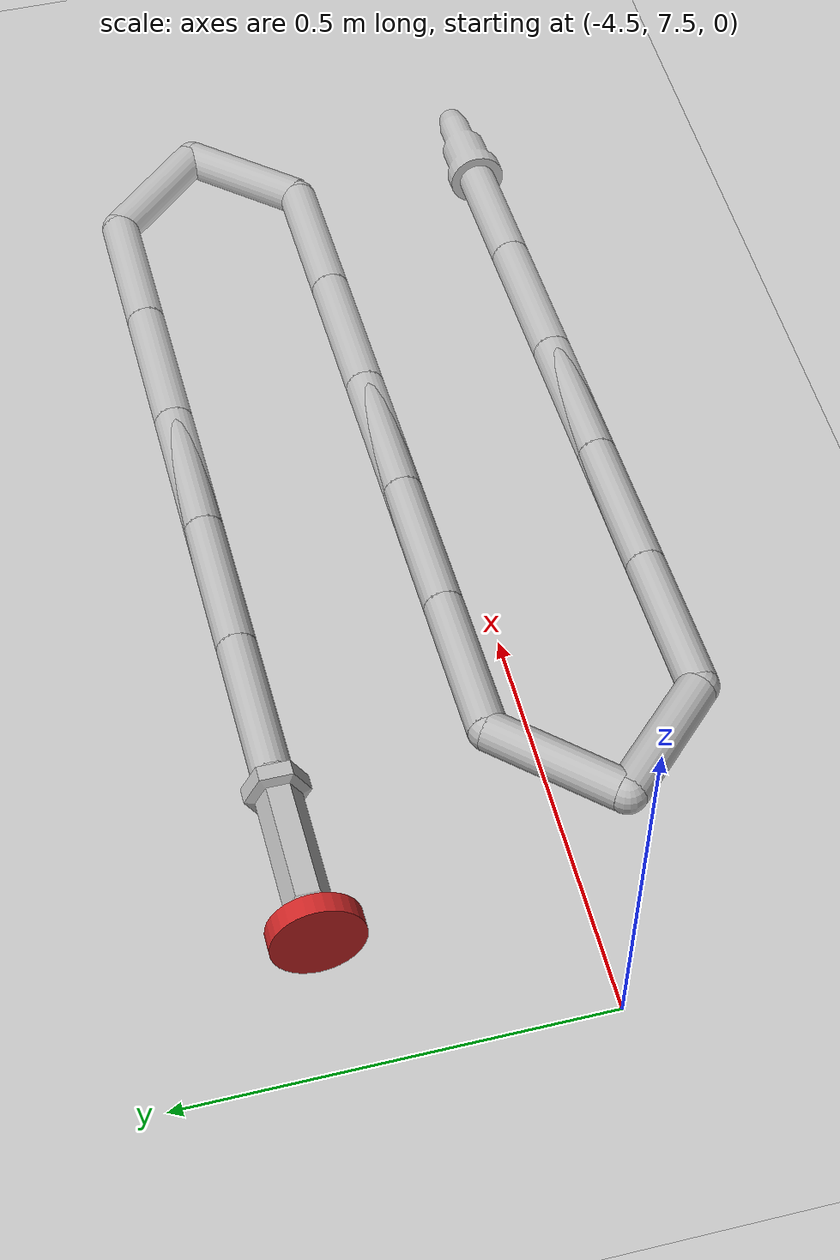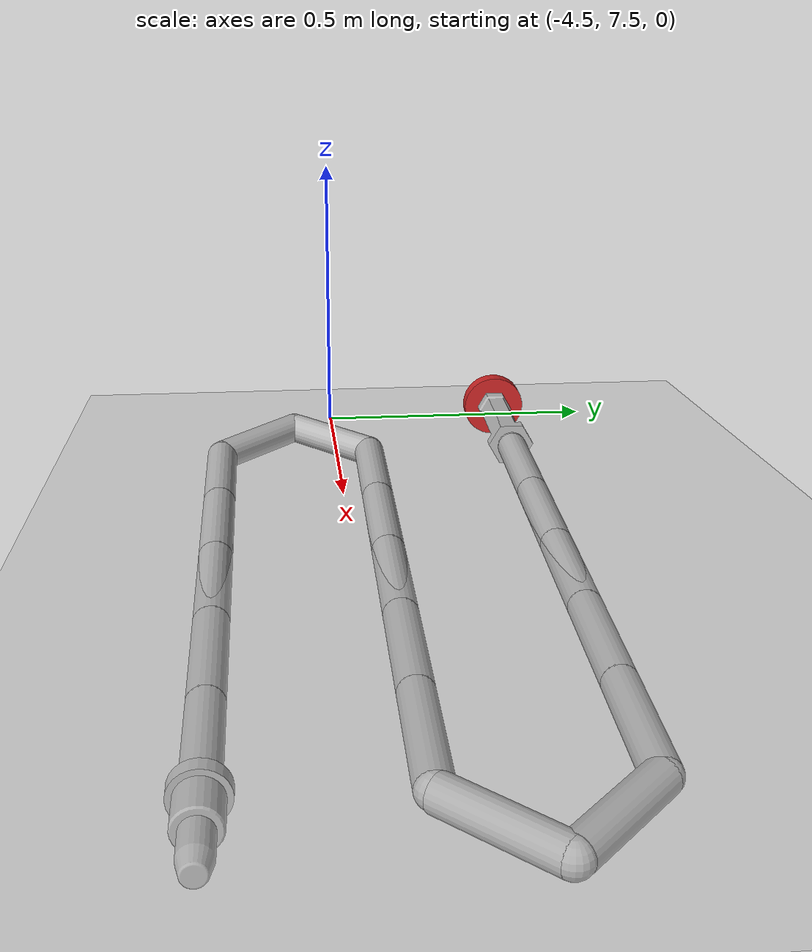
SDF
<sdf version="1.7">
 <world name="default">
  <model name="ground_plane">
   <static>1</static>
   <link name="link">
    <collision name="collision">
     <geometry><plane><normal>0 0 1</normal><size>100 100</size></plane></geometry>
     <surface><friction><ode><mu>100</mu><mu2>50</mu2></ode></friction></surface>
    </collision>
    <visual name="visual">
     <cast_shadows>0</cast_shadows>
     <geometry><plane><normal>0 0 1</normal><size>100 100</size></plane></geometry>
     <material>
      <script><uri>file://media/materials/scripts/gazebo.material</uri><name>Gazebo/Grey</name></script>
     </material>
    </visual>
   </link>
  </model>
  <model name="fire_hose_long_curled">
   <pose>-4.23806 7.80597 0.043395 -2.2e-05 0.103032 0.001179</pose>
   <link name="coupling">
    <inertial>
     <pose>-0.07 0 0 0 -0 0</pose>
     <mass>0.1</mass>
     <inertia><ixx>0.01</ixx><ixy>0</ixy><ixz>0</ixz><iyy>0.01</iyy><iyz>0</iyz><izz>0.01</izz></inertia>
    </inertial>
    <collision name="coupling_collision">
     <pose>-0.01 0 0 0 -1.57079 0</pose>
     <geometry>
      <mesh><scale>0.4 0.4 0.8</scale><uri>model://fire_hose_long_curled/meshes/coupling_hexagon.dae</uri></mesh>
     </geometry>
     <surface><friction><ode><mu>1</mu><mu2>1</mu2></ode></friction></surface>
    </collision>
    <visual name="coupling_vis">
     <pose>-0.01 0 0 0 -1.57079 0</pose>
     <geometry>
      <mesh><scale>0.4 0.4 0.8</scale><uri>model://fire_hose_long_curled/meshes/coupling_hexagon.dae</uri></mesh>
     </geometry>
     <material>
      <script>
       <uri>model://fire_hose_long_curled/materials/scripts</uri>
       <uri>model://fire_hose_long_curled/materials/textures</uri>
       <name>fire_hose_long_curled/fire_hose_coupling</name>
      </script>
     </material>
    </visual>
    <visual name="attachment_vis">
     <pose>-0.1225 0 0 0 -1.57079 0</pose>
     <geometry><mesh><uri>model://fire_hose_long_curled/meshes/connector.dae</uri></mesh></geometry>
     <material>
      <script>
       <uri>model://fire_hose_long_curled/materials/scripts</uri>
       <uri>model://fire_hose_long_curled/materials/textures</uri>
       <name>fire_hose_long_curled/fire_hose_red_coupling</name>
      </script>
     </material>
    </visual>
    <collision name="attachment_col">
     <pose>-0.1225 0 0 0 -1.57079 0</pose>
     <geometry><cylinder><length>0.025</length><radius>0.055</radius></cylinder></geometry>
     <surface>
      <contact><ode><min_depth>0.005</min_depth></ode></contact>
      <friction><ode><mu>1</mu><mu2>1</mu2></ode></friction>
     </surface>
    </collision>
   </link>
   <link name="link_00">
    <pose>0.1 0 0 0 -0 0</pose>
    <inertial>
     <mass>0.1</mass>
     <pose>0.1 0 0 0 -0 0</pose>
     <inertia><ixx>0.01</ixx><ixy>0</ixy><ixz>0</ixz><iyy>0.01</iyy><iyz>0</iyz><izz>0.01</izz></inertia>
    </inertial>
    <visual name="sphere">
     <geometry><sphere><radius>0.025</radius></sphere></geometry>
     <material>
      <script>
       <uri>model://fire_hose_long_curled/materials/scripts</uri>
       <uri>model://fire_hose_long_curled/materials/textures</uri>
       <name>fire_hose_long_curled/fire_hose_canvas</name>
      </script>
     </material>
    </visual>
   </link>
   <link name="link_01">
    <pose>0.1 0 0 0 -0 0</pose>
    <inertial>
     <mass>0.1</mass>
     <pose>0.1 0 0 0 -0 0</pose>
     <inertia><ixx>0.01</ixx><ixy>0</ixy><ixz>0</ixz><iyy>0.01</iyy><iyz>0</iyz><izz>0.01</izz></inertia>
    </inertial>
    <collision name="collision">
     <pose>0.1 0 0 0 1.57079 0</pose>
     <geometry><cylinder><length>0.2</length><radius>0.025</radius></cylinder></geometry>
     <surface>
      <contact><ode><min_depth>0.005</min_depth></ode></contact>
      <friction><ode><mu>1</mu><mu2>1</mu2></ode></friction>
     </surface>
    </collision>
    <visual name="visual">
     <pose>0.1 0 0 0 1.57079 0</pose>
     <geometry><cylinder><length>0.2</length><radius>0.025</radius></cylinder></geometry>
     <material>
      <script>
       <uri>model://fire_hose_long_curled/materials/scripts</uri>
       <uri>model://fire_hose_long_curled/materials/textures</uri>
       <name>fire_hose_long_curled/fire_hose_canvas</name>
      </script>
     </material>
    </visual>
   </link>
   <link name="link_02">
    <pose>0.3 0 0 0 -0 0</pose>
    <inertial>
     <mass>0.1</mass>
     <pose>0.1 0 0 0 -0 0</pose>
     <inertia><ixx>0.01</ixx><ixy>0</ixy><ixz>0</ixz><iyy>0.01</iyy><iyz>0</iyz><izz>0.01</izz></inertia>
    </inertial>
    <collision name="collision">
     <pose>0.1 0 0 0 1.57079 0</pose>
     <geometry><cylinder><length>0.2</length><radius>0.025</radius></cylinder></geometry>
     <surface>
      <contact><ode><min_depth>0.005</min_depth></ode></contact>
      <friction><ode><mu>1</mu><mu2>1</mu2></ode></friction>
     </surface>
    </collision>
    <visual name="visual">
     <pose>0.1 0 0 0 1.57079 0</pose>
     <geometry><cylinder><length>0.2</length><radius>0.025</radius></cylinder></geometry>
     <material>
      <script>
       <uri>model://fire_hose_long_curled/materials/scripts</uri>
       <uri>model://fire_hose_long_curled/materials/textures</uri>
       <name>fire_hose_long_curled/fire_hose_canvas</name>
      </script>
     </material>
    </visual>
    <visual name="sphere">
     <geometry><sphere><radius>0.025</radius></sphere></geometry>
     <material>
      <script>
       <uri>model://fire_hose_long_curled/materials/scripts</uri>
       <uri>model://fire_hose_long_curled/materials/textures</uri>
       <name>fire_hose_long_curled/fire_hose_canvas</name>
      </script>
     </material>
    </visual>
   </link>
   <link name="link_03">
    <pose>0.5 0 0 0 -0 0</pose>
    <inertial>
     <mass>0.1</mass>
     <pose>0.1 0 0 0 -0 0</pose>
     <inertia><ixx>0.01</ixx><ixy>0</ixy><ixz>0</ixz><iyy>0.01</iyy><iyz>0</iyz><izz>0.01</izz></inertia>
    </inertial>
    <collision name="collision">
     <pose>0.1 0 0 0 1.57079 0</pose>
     <geometry><cylinder><length>0.2</length><radius>0.025</radius></cylinder></geometry>
     <surface>
      <contact><ode><min_depth>0.005</min_depth></ode></contact>
      <friction><ode><mu>1</mu><mu2>1</mu2></ode></friction>
     </surface>
    </collision>
    <visual name="visual">
     <pose>0.1 0 0 0 1.57079 0</pose>
     <geometry><cylinder><length>0.2</length><radius>0.025</radius></cylinder></geometry>
     <material>
      <script>
       <uri>model://fire_hose_long_curled/materials/scripts</uri>
       <uri>model://fire_hose_long_curled/materials/textures</uri>
       <name>fire_hose_long_curled/fire_hose_canvas</name>
      </script>
     </material>
    </visual>
    <visual name="sphere">
     <geometry><sphere><radius>0.025</radius></sphere></geometry>
     <material>
      <script>
       <uri>model://fire_hose_long_curled/materials/scripts</uri>
       <uri>model://fire_hose_long_curled/materials/textures</uri>
       <name>fire_hose_long_curled/fire_hose_canvas</name>
      </script>
     </material>
    </visual>
   </link>
   <link name="link_04">
    <pose>0.7 0 0 0 -0 0</pose>
    <inertial>
     <mass>0.1</mass>
     <pose>0.1 0 0 0 -0 0</pose>
     <inertia><ixx>0.01</ixx><ixy>0</ixy><ixz>0</ixz><iyy>0.01</iyy><iyz>0</iyz><izz>0.01</izz></inertia>
    </inertial>
    <collision name="collision">
     <pose>0.1 0 0 0 1.57079 0</pose>
     <geometry><cylinder><length>0.2</length><radius>0.025</radius></cylinder></geometry>
     <surface>
      <contact><ode><min_depth>0.005</min_depth></ode></contact>
      <friction><ode><mu>1</mu><mu2>1</mu2></ode></friction>
     </surface>
    </collision>
    <visual name="visual">
     <pose>0.1 0 0 0 1.57079 0</pose>
     <geometry><cylinder><length>0.2</length><radius>0.025</radius></cylinder></geometry>
     <material>
      <script>
       <uri>model://fire_hose_long_curled/materials/scripts</uri>
       <uri>model://fire_hose_long_curled/materials/textures</uri>
       <name>fire_hose_long_curled/fire_hose_canvas</name>
      </script>
     </material>
    </visual>
    <visual name="sphere">
     <geometry><sphere><radius>0.025</radius></sphere></geometry>
     <material>
      <script>
       <uri>model://fire_hose_long_curled/materials/scripts</uri>
       <uri>model://fire_hose_long_curled/materials/textures</uri>
       <name>fire_hose_long_curled/fire_hose_canvas</name>
      </script>
     </material>
    </visual>
   </link>
   <link name="link_05">
    <pose>0.9 0 0 0 -0 0</pose>
    <inertial>
     <mass>0.1</mass>
     <pose>0.1 0 0 0 -0 0</pose>
     <inertia><ixx>0.01</ixx><ixy>0</ixy><ixz>0</ixz><iyy>0.01</iyy><iyz>0</iyz><izz>0.01</izz></inertia>
    </inertial>
    <collision name="collision">
     <pose>0.1 0 0 0 1.57079 0</pose>
     <geometry><cylinder><length>0.2</length><radius>0.025</radius></cylinder></geometry>
     <surface>
      <contact><ode><min_depth>0.005</min_depth></ode></contact>
      <friction><ode><mu>1</mu><mu2>1</mu2></ode></friction>
     </surface>
    </collision>
    <visual name="visual">
     <pose>0.1 0 0 0 1.57079 0</pose>
     <geometry><cylinder><length>0.2</length><radius>0.025</radius></cylinder></geometry>
     <material>
      <script>
       <uri>model://fire_hose_long_curled/materials/scripts</uri>
       <uri>model://fire_hose_long_curled/materials/textures</uri>
       <name>fire_hose_long_curled/fire_hose_canvas</name>
      </script>
     </material>
    </visual>
    <visual name="sphere">
     <geometry><sphere><radius>0.025</radius></sphere></geometry>
     <material>
      <script>
       <uri>model://fire_hose_long_curled/materials/scripts</uri>
       <uri>model://fire_hose_long_curled/materials/textures</uri>
       <name>fire_hose_long_curled/fire_hose_canvas</name>
      </script>
     </material>
    </visual>
   </link>
   <link name="link_06">
    <pose>1.1 0 0 0 0 -0.785</pose>
    <inertial>
     <mass>0.1</mass>
     <pose>0.0875 0 0 0 -0 0</pose>
     <inertia><ixx>0.01</ixx><ixy>0</ixy><ixz>0</ixz><iyy>0.01</iyy><iyz>0</iyz><izz>0.01</izz></inertia>
    </inertial>
    <collision name="collision">
     <pose>0.0875 0 0 0 1.57079 0</pose>
     <geometry><cylinder><length>0.175</length><radius>0.025</radius></cylinder></geometry>
     <surface>
      <contact><ode><min_depth>0.005</min_depth></ode></contact>
      <friction><ode><mu>1</mu><mu2>1</mu2></ode></friction>
     </surface>
    </collision>
    <visual name="visual">
     <pose>0.0875 0 0 0 1.57079 0</pose>
     <geometry><cylinder><length>0.175</length><radius>0.025</radius></cylinder></geometry>
     <material>
      <script>
       <uri>model://fire_hose_long_curled/materials/scripts</uri>
       <uri>model://fire_hose_long_curled/materials/textures</uri>
       <name>fire_hose_long_curled/fire_hose_canvas</name>
      </script>
     </material>
    </visual>
    <visual name="sphere">
     <geometry><sphere><radius>0.025</radius></sphere></geometry>
     <material>
      <script>
       <uri>model://fire_hose_long_curled/materials/scripts</uri>
       <uri>model://fire_hose_long_curled/materials/textures</uri>
       <name>fire_hose_long_curled/fire_hose_canvas</name>
      </script>
     </material>
    </visual>
   </link>
   <link name="link_07">
    <pose>1.227 -0.127 0 0 0 -2.3415</pose>
    <inertial>
     <mass>0.1</mass>
     <pose>0.0875 0 0 0 -0 0</pose>
     <inertia><ixx>0.01</ixx><ixy>0</ixy><ixz>0</ixz><iyy>0.01</iyy><iyz>0</iyz><izz>0.01</izz></inertia>
    </inertial>
    <collision name="collision">
     <pose>0.0875 0 0 0 1.57079 0</pose>
     <geometry><cylinder><length>0.175</length><radius>0.025</radius></cylinder></geometry>
     <surface>
      <contact><ode><min_depth>0.005</min_depth></ode></contact>
      <friction><ode><mu>1</mu><mu2>1</mu2></ode></friction>
     </surface>
    </collision>
    <visual name="visual">
     <pose>0.0875 0 0 0 1.57079 0</pose>
     <geometry><cylinder><length>0.175</length><radius>0.025</radius></cylinder></geometry>
     <material>
      <script>
       <uri>model://fire_hose_long_curled/materials/scripts</uri>
       <uri>model://fire_hose_long_curled/materials/textures</uri>
       <name>fire_hose_long_curled/fire_hose_canvas</name>
      </script>
     </material>
    </visual>
    <visual name="sphere">
     <geometry><sphere><radius>0.025</radius></sphere></geometry>
     <material>
      <script>
       <uri>model://fire_hose_long_curled/materials/scripts</uri>
       <uri>model://fire_hose_long_curled/materials/textures</uri>
       <name>fire_hose_long_curled/fire_hose_canvas</name>
      </script>
     </material>
    </visual>
   </link>
   <link name="link_08">
    <pose>1.1 -0.254 0 0 0 -3.1415</pose>
    <inertial>
     <mass>0.1</mass>
     <pose>0.1 0 0 0 -0 0</pose>
     <inertia><ixx>0.01</ixx><ixy>0</ixy><ixz>0</ixz><iyy>0.01</iyy><iyz>0</iyz><izz>0.01</izz></inertia>
    </inertial>
    <collision name="collision">
     <pose>0.1 0 0 0 1.57079 0</pose>
     <geometry><cylinder><length>0.2</length><radius>0.025</radius></cylinder></geometry>
     <surface>
      <contact><ode><min_depth>0.005</min_depth></ode></contact>
      <friction><ode><mu>1</mu><mu2>1</mu2></ode></friction>
     </surface>
    </collision>
    <visual name="visual">
     <pose>0.1 0 0 0 1.57079 0</pose>
     <geometry><cylinder><length>0.2</length><radius>0.025</radius></cylinder></geometry>
     <material>
      <script>
       <uri>model://fire_hose_long_curled/materials/scripts</uri>
       <uri>model://fire_hose_long_curled/materials/textures</uri>
       <name>fire_hose_long_curled/fire_hose_canvas</name>
      </script>
     </material>
    </visual>
    <visual name="sphere">
     <geometry><sphere><radius>0.025</radius></sphere></geometry>
     <material>
      <script>
       <uri>model://fire_hose_long_curled/materials/scripts</uri>
       <uri>model://fire_hose_long_curled/materials/textures</uri>
       <name>fire_hose_long_curled/fire_hose_canvas</name>
      </script>
     </material>
    </visual>
   </link>
   <link name="link_09">
    <pose>0.9 -0.254 0 0 0 -3.1415</pose>
    <inertial>
     <mass>0.1</mass>
     <pose>0.1 0 0 0 -0 0</pose>
     <inertia><ixx>0.01</ixx><ixy>0</ixy><ixz>0</ixz><iyy>0.01</iyy><iyz>0</iyz><izz>0.01</izz></inertia>
    </inertial>
    <collision name="collision">
     <pose>0.1 0 0 0 1.57079 0</pose>
     <geometry><cylinder><length>0.2</length><radius>0.025</radius></cylinder></geometry>
     <surface>
      <contact><ode><min_depth>0.005</min_depth></ode></contact>
      <friction><ode><mu>1</mu><mu2>1</mu2></ode></friction>
     </surface>
    </collision>
    <visual name="visual">
     <pose>0.1 0 0 0 1.57079 0</pose>
     <geometry><cylinder><length>0.2</length><radius>0.025</radius></cylinder></geometry>
     <material>
      <script>
       <uri>model://fire_hose_long_curled/materials/scripts</uri>
       <uri>model://fire_hose_long_curled/materials/textures</uri>
       <name>fire_hose_long_curled/fire_hose_canvas</name>
      </script>
     </material>
    </visual>
    <visual name="sphere">
     <geometry><sphere><radius>0.025</radius></sphere></geometry>
     <material>
      <script>
       <uri>model://fire_hose_long_curled/materials/scripts</uri>
       <uri>model://fire_hose_long_curled/materials/textures</uri>
       <name>fire_hose_long_curled/fire_hose_canvas</name>
      </script>
     </material>
    </visual>
   </link>
   <link name="link_10">
    <pose>0.7 -0.254 0 0 0 -3.1415</pose>
    <inertial>
     <mass>0.1</mass>
     <pose>0.1 0 0 0 -0 0</pose>
     <inertia><ixx>0.01</ixx><ixy>0</ixy><ixz>0</ixz><iyy>0.01</iyy><iyz>0</iyz><izz>0.01</izz></inertia>
    </inertial>
    <collision name="collision">
     <pose>0.1 0 0 0 1.57079 0</pose>
     <geometry><cylinder><length>0.2</length><radius>0.025</radius></cylinder></geometry>
     <surface>
      <contact><ode><min_depth>0.005</min_depth></ode></contact>
      <friction><ode><mu>1</mu><mu2>1</mu2></ode></friction>
     </surface>
    </collision>
    <visual name="visual">
     <pose>0.1 0 0 0 1.57079 0</pose>
     <geometry><cylinder><length>0.2</length><radius>0.025</radius></cylinder></geometry>
     <material>
      <script>
       <uri>model://fire_hose_long_curled/materials/scripts</uri>
       <uri>model://fire_hose_long_curled/materials/textures</uri>
       <name>fire_hose_long_curled/fire_hose_canvas</name>
      </script>
     </material>
    </visual>
    <visual name="sphere">
     <geometry><sphere><radius>0.025</radius></sphere></geometry>
     <material>
      <script>
       <uri>model://fire_hose_long_curled/materials/scripts</uri>
       <uri>model://fire_hose_long_curled/materials/textures</uri>
       <name>fire_hose_long_curled/fire_hose_canvas</name>
      </script>
     </material>
    </visual>
   </link>
   <link name="link_11">
    <pose>0.5 -0.254 0 0 0 -3.1415</pose>
    <inertial>
     <mass>0.1</mass>
     <pose>0.1 0 0 0 -0 0</pose>
     <inertia><ixx>0.01</ixx><ixy>0</ixy><ixz>0</ixz><iyy>0.01</iyy><iyz>0</iyz><izz>0.01</izz></inertia>
    </inertial>
    <collision name="collision">
     <pose>0.1 0 0 0 1.57079 0</pose>
     <geometry><cylinder><length>0.2</length><radius>0.025</radius></cylinder></geometry>
     <surface>
      <contact><ode><min_depth>0.005</min_depth></ode></contact>
      <friction><ode><mu>1</mu><mu2>1</mu2></ode></friction>
     </surface>
    </collision>
    <visual name="visual">
     <pose>0.1 0 0 0 1.57079 0</pose>
     <geometry><cylinder><length>0.2</length><radius>0.025</radius></cylinder></geometry>
     <material>
      <script>
       <uri>model://fire_hose_long_curled/materials/scripts</uri>
       <uri>model://fire_hose_long_curled/materials/textures</uri>
       <name>fire_hose_long_curled/fire_hose_canvas</name>
      </script>
     </material>
    </visual>
    <visual name="sphere">
     <geometry><sphere><radius>0.025</radius></sphere></geometry>
     <material>
      <script>
       <uri>model://fire_hose_long_curled/materials/scripts</uri>
       <uri>model://fire_hose_long_curled/materials/textures</uri>
       <name>fire_hose_long_curled/fire_hose_canvas</name>
      </script>
     </material>
    </visual>
   </link>
   <link name="link_12">
    <pose>0.3 -0.254 0 0 0 -3.1415</pose>
    <inertial>
     <mass>0.1</mass>
     <pose>0.1 0 0 0 -0 0</pose>
     <inertia><ixx>0.01</ixx><ixy>0</ixy><ixz>0</ixz><iyy>0.01</iyy><iyz>0</iyz><izz>0.01</izz></inertia>
    </inertial>
    <collision name="collision">
     <pose>0.1 0 0 0 1.57079 0</pose>
     <geometry><cylinder><length>0.2</length><radius>0.025</radius></cylinder></geometry>
     <surface>
      <contact><ode><min_depth>0.005</min_depth></ode></contact>
      <friction><ode><mu>1</mu><mu2>1</mu2></ode></friction>
     </surface>
    </collision>
    <visual name="visual">
     <pose>0.1 0 0 0 1.57079 0</pose>
     <geometry><cylinder><length>0.2</length><radius>0.025</radius></cylinder></geometry>
     <material>
      <script>
       <uri>model://fire_hose_long_curled/materials/scripts</uri>
       <uri>model://fire_hose_long_curled/materials/textures</uri>
       <name>fire_hose_long_curled/fire_hose_canvas</name>
      </script>
     </material>
    </visual>
    <visual name="sphere">
     <geometry><sphere><radius>0.025</radius></sphere></geometry>
     <material>
      <script>
       <uri>model://fire_hose_long_curled/materials/scripts</uri>
       <uri>model://fire_hose_long_curled/materials/textures</uri>
       <name>fire_hose_long_curled/fire_hose_canvas</name>
      </script>
     </material>
    </visual>
   </link>
   <link name="link_13">
    <pose>0.1 -0.254 0 0 0 -2.356</pose>
    <inertial>
     <mass>0.1</mass>
     <pose>0.0875 0 0 0 -0 0</pose>
     <inertia><ixx>0.01</ixx><ixy>0</ixy><ixz>0</ixz><iyy>0.01</iyy><iyz>0</iyz><izz>0.01</izz></inertia>
    </inertial>
    <collision name="collision">
     <pose>0.0875 0 0 0 1.57079 0</pose>
     <geometry><cylinder><length>0.175</length><radius>0.025</radius></cylinder></geometry>
     <surface>
      <contact><ode><min_depth>0.005</min_depth></ode></contact>
      <friction><ode><mu>1</mu><mu2>1</mu2></ode></friction>
     </surface>
    </collision>
    <visual name="visual">
     <pose>0.0875 0 0 0 1.57079 0</pose>
     <geometry><cylinder><length>0.175</length><radius>0.025</radius></cylinder></geometry>
     <material>
      <script>
       <uri>model://fire_hose_long_curled/materials/scripts</uri>
       <uri>model://fire_hose_long_curled/materials/textures</uri>
       <name>fire_hose_long_curled/fire_hose_canvas</name>
      </script>
     </material>
    </visual>
    <visual name="sphere">
     <geometry><sphere><radius>0.025</radius></sphere></geometry>
     <material>
      <script>
       <uri>model://fire_hose_long_curled/materials/scripts</uri>
       <uri>model://fire_hose_long_curled/materials/textures</uri>
       <name>fire_hose_long_curled/fire_hose_canvas</name>
      </script>
     </material>
    </visual>
   </link>
   <link name="link_14">
    <pose>-0.027 -0.381 0 0 0 -0.785</pose>
    <inertial>
     <mass>0.1</mass>
     <pose>0.0875 0 0 0 -0 0</pose>
     <inertia><ixx>0.01</ixx><ixy>0</ixy><ixz>0</ixz><iyy>0.01</iyy><iyz>0</iyz><izz>0.01</izz></inertia>
    </inertial>
    <collision name="collision">
     <pose>0.0875 0 0 0 1.57079 0</pose>
     <geometry><cylinder><length>0.175</length><radius>0.025</radius></cylinder></geometry>
     <surface>
      <contact><ode><min_depth>0.005</min_depth></ode></contact>
      <friction><ode><mu>1</mu><mu2>1</mu2></ode></friction>
     </surface>
    </collision>
    <visual name="visual">
     <pose>0.0875 0 0 0 1.57079 0</pose>
     <geometry><cylinder><length>0.175</length><radius>0.025</radius></cylinder></geometry>
     <material>
      <script>
       <uri>model://fire_hose_long_curled/materials/scripts</uri>
       <uri>model://fire_hose_long_curled/materials/textures</uri>
       <name>fire_hose_long_curled/fire_hose_canvas</name>
      </script>
     </material>
    </visual>
    <visual name="sphere">
     <geometry><sphere><radius>0.025</radius></sphere></geometry>
     <material>
      <script>
       <uri>model://fire_hose_long_curled/materials/scripts</uri>
       <uri>model://fire_hose_long_curled/materials/textures</uri>
       <name>fire_hose_long_curled/fire_hose_canvas</name>
      </script>
     </material>
    </visual>
   </link>
   <link name="link_15">
    <pose>0.1 -0.508 0 0 -0 0</pose>
    <inertial>
     <mass>0.1</mass>
     <pose>0.1 0 0 0 -0 0</pose>
     <inertia><ixx>0.01</ixx><ixy>0</ixy><ixz>0</ixz><iyy>0.01</iyy><iyz>0</iyz><izz>0.01</izz></inertia>
    </inertial>
    <collision name="collision">
     <pose>0.1 0 0 0 1.57079 0</pose>
     <geometry><cylinder><length>0.2</length><radius>0.025</radius></cylinder></geometry>
     <surface>
      <contact><ode><min_depth>0.005</min_depth></ode></contact>
      <friction><ode><mu>1</mu><mu2>1</mu2></ode></friction>
     </surface>
    </collision>
    <visual name="visual">
     <pose>0.1 0 0 0 1.57079 0</pose>
     <geometry><cylinder><length>0.2</length><radius>0.025</radius></cylinder></geometry>
     <material>
      <script>
       <uri>model://fire_hose_long_curled/materials/scripts</uri>
       <uri>model://fire_hose_long_curled/materials/textures</uri>
       <name>fire_hose_long_curled/fire_hose_canvas</name>
      </script>
     </material>
    </visual>
    <visual name="sphere">
     <geometry><sphere><radius>0.025</radius></sphere></geometry>
     <material>
      <script>
       <uri>model://fire_hose_long_curled/materials/scripts</uri>
       <uri>model://fire_hose_long_curled/materials/textures</uri>
       <name>fire_hose_long_curled/fire_hose_canvas</name>
      </script>
     </material>
    </visual>
   </link>
   <link name="link_16">
    <pose>0.3 -0.508 0 0 -0 0</pose>
    <inertial>
     <mass>0.1</mass>
     <pose>0.1 0 0 0 -0 0</pose>
     <inertia><ixx>0.01</ixx><ixy>0</ixy><ixz>0</ixz><iyy>0.01</iyy><iyz>0</iyz><izz>0.01</izz></inertia>
    </inertial>
    <collision name="collision">
     <pose>0.1 0 0 0 1.57079 0</pose>
     <geometry><cylinder><length>0.2</length><radius>0.025</radius></cylinder></geometry>
     <surface>
      <contact><ode><min_depth>0.005</min_depth></ode></contact>
      <friction><ode><mu>1</mu><mu2>1</mu2></ode></friction>
     </surface>
    </collision>
    <visual name="visual">
     <pose>0.1 0 0 0 1.57079 0</pose>
     <geometry><cylinder><length>0.2</length><radius>0.025</radius></cylinder></geometry>
     <material>
      <script>
       <uri>model://fire_hose_long_curled/materials/scripts</uri>
       <uri>model://fire_hose_long_curled/materials/textures</uri>
       <name>fire_hose_long_curled/fire_hose_canvas</name>
      </script>
     </material>
    </visual>
    <visual name="sphere">
     <geometry><sphere><radius>0.025</radius></sphere></geometry>
     <material>
      <script>
       <uri>model://fire_hose_long_curled/materials/scripts</uri>
       <uri>model://fire_hose_long_curled/materials/textures</uri>
       <name>fire_hose_long_curled/fire_hose_canvas</name>
      </script>
     </material>
    </visual>
   </link>
   <link name="link_17">
    <pose>0.5 -0.508 0 0 -0 0</pose>
    <inertial>
     <mass>0.1</mass>
     <pose>0.1 0 0 0 -0 0</pose>
     <inertia><ixx>0.01</ixx><ixy>0</ixy><ixz>0</ixz><iyy>0.01</iyy><iyz>0</iyz><izz>0.01</izz></inertia>
    </inertial>
    <collision name="collision">
     <pose>0.1 0 0 0 1.57079 0</pose>
     <geometry><cylinder><length>0.2</length><radius>0.025</radius></cylinder></geometry>
     <surface>
      <contact><ode><min_depth>0.005</min_depth></ode></contact>
      <friction><ode><mu>1</mu><mu2>1</mu2></ode></friction>
     </surface>
    </collision>
    <visual name="visual">
     <pose>0.1 0 0 0 1.57079 0</pose>
     <geometry><cylinder><length>0.2</length><radius>0.025</radius></cylinder></geometry>
     <material>
      <script>
       <uri>model://fire_hose_long_curled/materials/scripts</uri>
       <uri>model://fire_hose_long_curled/materials/textures</uri>
       <name>fire_hose_long_curled/fire_hose_canvas</name>
      </script>
     </material>
    </visual>
    <visual name="sphere">
     <geometry><sphere><radius>0.025</radius></sphere></geometry>
     <material>
      <script>
       <uri>model://fire_hose_long_curled/materials/scripts</uri>
       <uri>model://fire_hose_long_curled/materials/textures</uri>
       <name>fire_hose_long_curled/fire_hose_canvas</name>
      </script>
     </material>
    </visual>
   </link>
   <link name="link_18">
    <pose>0.7 -0.508 0 0 -0 0</pose>
    <inertial>
     <mass>0.1</mass>
     <pose>0.1 0 0 0 -0 0</pose>
     <inertia><ixx>0.01</ixx><ixy>0</ixy><ixz>0</ixz><iyy>0.01</iyy><iyz>0</iyz><izz>0.01</izz></inertia>
    </inertial>
    <collision name="collision">
     <pose>0.1 0 0 0 1.57079 0</pose>
     <geometry><cylinder><length>0.2</length><radius>0.025</radius></cylinder></geometry>
     <surface>
      <contact><ode><min_depth>0.005</min_depth></ode></contact>
      <friction><ode><mu>1</mu><mu2>1</mu2></ode></friction>
     </surface>
    </collision>
    <visual name="visual">
     <pose>0.1 0 0 0 1.57079 0</pose>
     <geometry><cylinder><length>0.2</length><radius>0.025</radius></cylinder></geometry>
     <material>
      <script>
       <uri>model://fire_hose_long_curled/materials/scripts</uri>
       <uri>model://fire_hose_long_curled/materials/textures</uri>
       <name>fire_hose_long_curled/fire_hose_canvas</name>
      </script>
     </material>
    </visual>
    <visual name="sphere">
     <geometry><sphere><radius>0.025</radius></sphere></geometry>
     <material>
      <script>
       <uri>model://fire_hose_long_curled/materials/scripts</uri>
       <uri>model://fire_hose_long_curled/materials/textures</uri>
       <name>fire_hose_long_curled/fire_hose_canvas</name>
      </script>
     </material>
    </visual>
   </link>
   <link name="link_19">
    <pose>0.9 -0.508 0 0 -0 0</pose>
    <inertial>
     <mass>0.1</mass>
     <pose>0.1 0 0 0 -0 0</pose>
     <inertia><ixx>0.01</ixx><ixy>0</ixy><ixz>0</ixz><iyy>0.01</iyy><iyz>0</iyz><izz>0.01</izz></inertia>
    </inertial>
    <collision name="collision">
     <pose>0.1 0 0 0 1.57079 0</pose>
     <geometry><cylinder><length>0.2</length><radius>0.025</radius></cylinder></geometry>
     <surface>
      <contact><ode><min_depth>0.005</min_depth></ode></contact>
      <friction><ode><mu>1</mu><mu2>1</mu2></ode></friction>
     </surface>
    </collision>
    <visual name="visual">
     <pose>0.1 0 0 0 1.57079 0</pose>
     <geometry><cylinder><length>0.2</length><radius>0.025</radius></cylinder></geometry>
     <material>
      <script>
       <uri>model://fire_hose_long_curled/materials/scripts</uri>
       <uri>model://fire_hose_long_curled/materials/textures</uri>
       <name>fire_hose_long_curled/fire_hose_canvas</name>
      </script>
     </material>
    </visual>
    <visual name="sphere">
     <geometry><sphere><radius>0.025</radius></sphere></geometry>
     <material>
      <script>
       <uri>model://fire_hose_long_curled/materials/scripts</uri>
       <uri>model://fire_hose_long_curled/materials/textures</uri>
       <name>fire_hose_long_curled/fire_hose_canvas</name>
      </script>
     </material>
    </visual>
   </link>
   <link name="nozzle">
    <pose>1.1 -0.508 0 0 -0 3.1415</pose>
    <inertial>
     <mass>0.1</mass>
     <inertia><ixx>0.01</ixx><ixy>0</ixy><ixz>0</ixz><iyy>0.01</iyy><iyz>0</iyz><izz>0.01</izz></inertia>
    </inertial>
    <collision name="nozzle_collision">
     <geometry>
      <mesh><scale>1 0.5 0.5</scale><uri>model://fire_hose_long_curled/meshes/nozzle.stl</uri></mesh>
     </geometry>
     <surface>
      <contact><ode><min_depth>0.005</min_depth></ode></contact>
      <friction><ode><mu>1</mu><mu2>1</mu2></ode></friction>
     </surface>
    </collision>
    <visual name="nozzle_vis">
     <geometry>
      <mesh><scale>1 0.5 0.5</scale><uri>model://fire_hose_long_curled/meshes/nozzle.stl</uri></mesh>
     </geometry>
    </visual>
   </link>
   <joint name="joint_00" type="revolute">
    <parent>coupling</parent>
    <child>link_00</child>
    <axis>
     <xyz expressed_in="__model__">1 0 0</xyz>
     <dynamics>
      <damping>1</damping>
      <spring_reference>0</spring_reference>
      <spring_stiffness>0</spring_stiffness>
     </dynamics>
     <limit><lower>-1e+16</lower><upper>1e+16</upper></limit>
    </axis>
    <physics><ode><cfm_damping>1</cfm_damping><limit><cfm>0</cfm><erp>0.2</erp></limit></ode></physics>
   </joint>
   <joint name="joint_01" type="universal">
    <child>link_01</child>
    <parent>link_00</parent>
    <axis>
     <xyz expressed_in="__model__">0 1 0</xyz>
     <limit><lower>-1.57</lower><upper>1.57</upper></limit>
     <dynamics>
      <damping>1</damping>
      <spring_reference>0</spring_reference>
      <spring_stiffness>0</spring_stiffness>
     </dynamics>
    </axis>
    <axis2>
     <xyz expressed_in="__model__">0 0 1</xyz>
     <limit><lower>-1.57</lower><upper>1.57</upper></limit>
     <dynamics>
      <damping>1</damping>
      <spring_reference>0</spring_reference>
      <spring_stiffness>0</spring_stiffness>
     </dynamics>
    </axis2>
    <physics><ode><cfm_damping>1</cfm_damping><limit><cfm>0</cfm><erp>0.2</erp></limit></ode></physics>
   </joint>
   <joint name="joint_02" type="universal">
    <child>link_02</child>
    <parent>link_01</parent>
    <axis>
     <xyz expressed_in="__model__">0 1 0</xyz>
     <limit><lower>-1.57</lower><upper>1.57</upper></limit>
     <dynamics>
      <damping>1</damping>
      <spring_reference>0</spring_reference>
      <spring_stiffness>0</spring_stiffness>
     </dynamics>
    </axis>
    <axis2>
     <xyz expressed_in="__model__">0 0 1</xyz>
     <limit><lower>-1.57</lower><upper>1.57</upper></limit>
     <dynamics>
      <damping>1</damping>
      <spring_reference>0</spring_reference>
      <spring_stiffness>0</spring_stiffness>
     </dynamics>
    </axis2>
    <physics><ode><cfm_damping>1</cfm_damping><limit><cfm>0</cfm><erp>0.2</erp></limit></ode></physics>
   </joint>
   <joint name="joint_03" type="universal">
    <child>link_03</child>
    <parent>link_02</parent>
    <axis>
     <xyz expressed_in="__model__">0 1 0</xyz>
     <limit><lower>-1.57</lower><upper>1.57</upper></limit>
     <dynamics>
      <damping>1</damping>
      <spring_reference>0</spring_reference>
      <spring_stiffness>0</spring_stiffness>
     </dynamics>
    </axis>
    <axis2>
     <xyz expressed_in="__model__">0 0 1</xyz>
     <limit><lower>-1.57</lower><upper>1.57</upper></limit>
     <dynamics>
      <damping>1</damping>
      <spring_reference>0</spring_reference>
      <spring_stiffness>0</spring_stiffness>
     </dynamics>
    </axis2>
    <physics><ode><cfm_damping>1</cfm_damping><limit><cfm>0</cfm><erp>0.2</erp></limit></ode></physics>
   </joint>
   <joint name="joint_04" type="universal">
    <child>link_04</child>
    <parent>link_03</parent>
    <axis>
     <xyz expressed_in="__model__">0 1 0</xyz>
     <limit><lower>-1.57</lower><upper>1.57</upper></limit>
     <dynamics>
      <damping>1</damping>
      <spring_reference>0</spring_reference>
      <spring_stiffness>0</spring_stiffness>
     </dynamics>
    </axis>
    <axis2>
     <xyz expressed_in="__model__">0 0 1</xyz>
     <limit><lower>-1.57</lower><upper>1.57</upper></limit>
     <dynamics>
      <damping>1</damping>
      <spring_reference>0</spring_reference>
      <spring_stiffness>0</spring_stiffness>
     </dynamics>
    </axis2>
    <physics><ode><cfm_damping>1</cfm_damping><limit><cfm>0</cfm><erp>0.2</erp></limit></ode></physics>
   </joint>
   <joint name="joint_05" type="universal">
    <child>link_05</child>
    <parent>link_04</parent>
    <axis>
     <xyz expressed_in="__model__">0 1 0</xyz>
     <limit><lower>-1.57</lower><upper>1.57</upper></limit>
     <dynamics>
      <damping>1</damping>
      <spring_reference>0</spring_reference>
      <spring_stiffness>0</spring_stiffness>
     </dynamics>
    </axis>
    <axis2>
     <xyz expressed_in="__model__">0 0 1</xyz>
     <limit><lower>-1.57</lower><upper>1.57</upper></limit>
     <dynamics>
      <damping>1</damping>
      <spring_reference>0</spring_reference>
      <spring_stiffness>0</spring_stiffness>
     </dynamics>
    </axis2>
    <physics><ode><cfm_damping>1</cfm_damping><limit><cfm>0</cfm><erp>0.2</erp></limit></ode></physics>
   </joint>
   <joint name="joint_06" type="universal">
    <child>link_06</child>
    <parent>link_05</parent>
    <axis>
     <xyz expressed_in="__model__">0 0 1</xyz>
     <limit><lower>-0.72</lower><upper>2.35</upper></limit>
     <dynamics>
      <damping>1</damping>
      <spring_reference>0</spring_reference>
      <spring_stiffness>0</spring_stiffness>
     </dynamics>
    </axis>
    <axis2>
     <xyz expressed_in="__model__">1 1 0</xyz>
     <limit><lower>-1.57</lower><upper>1.57</upper></limit>
     <dynamics>
      <damping>1</damping>
      <spring_reference>0</spring_reference>
      <spring_stiffness>0</spring_stiffness>
     </dynamics>
    </axis2>
    <physics><ode><cfm_damping>1</cfm_damping><limit><cfm>0</cfm><erp>0.2</erp></limit></ode></physics>
   </joint>
   <joint name="joint_07" type="universal">
    <child>link_07</child>
    <parent>link_06</parent>
    <axis>
     <xyz expressed_in="__model__">0 0 1</xyz>
     <limit><lower>-0</lower><upper>3</upper></limit>
     <dynamics>
      <damping>1</damping>
      <spring_reference>0</spring_reference>
      <spring_stiffness>0</spring_stiffness>
     </dynamics>
    </axis>
    <axis2>
     <xyz expressed_in="__model__">-1 1 0</xyz>
     <limit><lower>-1.57</lower><upper>1.57</upper></limit>
     <dynamics>
      <damping>1</damping>
      <spring_reference>0</spring_reference>
      <spring_stiffness>0</spring_stiffness>
     </dynamics>
    </axis2>
    <physics><ode><cfm_damping>1</cfm_damping><limit><cfm>0</cfm><erp>0.2</erp></limit></ode></physics>
   </joint>
   <joint name="joint_08" type="universal">
    <child>link_08</child>
    <parent>link_07</parent>
    <axis>
     <xyz expressed_in="__model__">0 1 0</xyz>
     <limit><lower>-1.57</lower><upper>1.57</upper></limit>
     <dynamics>
      <damping>1</damping>
      <spring_reference>0</spring_reference>
      <spring_stiffness>0</spring_stiffness>
     </dynamics>
    </axis>
    <axis2>
     <xyz expressed_in="__model__">0 0 1</xyz>
     <limit><lower>-0.72</lower><upper>2.35</upper></limit>
     <dynamics>
      <damping>1</damping>
      <spring_reference>0</spring_reference>
      <spring_stiffness>0</spring_stiffness>
     </dynamics>
    </axis2>
    <physics><ode><cfm_damping>1</cfm_damping><limit><cfm>0</cfm><erp>0.2</erp></limit></ode></physics>
   </joint>
   <joint name="joint_09" type="universal">
    <child>link_09</child>
    <parent>link_08</parent>
    <axis>
     <xyz expressed_in="__model__">0 1 0</xyz>
     <limit><lower>-1.57</lower><upper>1.57</upper></limit>
     <dynamics>
      <damping>1</damping>
      <spring_reference>0</spring_reference>
      <spring_stiffness>0</spring_stiffness>
     </dynamics>
    </axis>
    <axis2>
     <xyz expressed_in="__model__">0 0 1</xyz>
     <limit><lower>-1.57</lower><upper>1.57</upper></limit>
     <dynamics>
      <damping>1</damping>
      <spring_reference>0</spring_reference>
      <spring_stiffness>0</spring_stiffness>
     </dynamics>
    </axis2>
    <physics><ode><cfm_damping>1</cfm_damping><limit><cfm>0</cfm><erp>0.2</erp></limit></ode></physics>
   </joint>
   <joint name="joint_10" type="universal">
    <child>link_10</child>
    <parent>link_09</parent>
    <axis>
     <xyz expressed_in="__model__">0 1 0</xyz>
     <limit><lower>-1.57</lower><upper>1.57</upper></limit>
     <dynamics>
      <damping>1</damping>
      <spring_reference>0</spring_reference>
      <spring_stiffness>0</spring_stiffness>
     </dynamics>
    </axis>
    <axis2>
     <xyz expressed_in="__model__">0 0 1</xyz>
     <limit><lower>-1.57</lower><upper>1.57</upper></limit>
     <dynamics>
      <damping>1</damping>
      <spring_reference>0</spring_reference>
      <spring_stiffness>0</spring_stiffness>
     </dynamics>
    </axis2>
    <physics><ode><cfm_damping>1</cfm_damping><limit><cfm>0</cfm><erp>0.2</erp></limit></ode></physics>
   </joint>
   <joint name="joint_11" type="universal">
    <child>link_11</child>
    <parent>link_10</parent>
    <axis>
     <xyz expressed_in="__model__">0 1 0</xyz>
     <limit><lower>-1.57</lower><upper>1.57</upper></limit>
     <dynamics>
      <damping>1</damping>
      <spring_reference>0</spring_reference>
      <spring_stiffness>0</spring_stiffness>
     </dynamics>
    </axis>
    <axis2>
     <xyz expressed_in="__model__">0 0 1</xyz>
     <limit><lower>-1.57</lower><upper>1.57</upper></limit>
     <dynamics>
      <damping>1</damping>
      <spring_reference>0</spring_reference>
      <spring_stiffness>0</spring_stiffness>
     </dynamics>
    </axis2>
    <physics><ode><cfm_damping>1</cfm_damping><limit><cfm>0</cfm><erp>0.2</erp></limit></ode></physics>
   </joint>
   <joint name="joint_12" type="universal">
    <child>link_12</child>
    <parent>link_11</parent>
    <axis>
     <xyz expressed_in="__model__">0 1 0</xyz>
     <limit><lower>-1.57</lower><upper>1.57</upper></limit>
     <dynamics>
      <damping>1</damping>
      <spring_reference>0</spring_reference>
      <spring_stiffness>0</spring_stiffness>
     </dynamics>
    </axis>
    <axis2>
     <xyz expressed_in="__model__">0 0 1</xyz>
     <limit><lower>-1.57</lower><upper>1.57</upper></limit>
     <dynamics>
      <damping>1</damping>
      <spring_reference>0</spring_reference>
      <spring_stiffness>0</spring_stiffness>
     </dynamics>
    </axis2>
    <physics><ode><cfm_damping>1</cfm_damping><limit><cfm>0</cfm><erp>0.2</erp></limit></ode></physics>
   </joint>
   <joint name="joint_13" type="universal">
    <child>link_13</child>
    <parent>link_12</parent>
    <axis>
     <xyz expressed_in="__model__">0 0 1</xyz>
     <limit><lower>-2.35</lower><upper>0.72</upper></limit>
     <dynamics>
      <damping>1</damping>
      <spring_reference>0</spring_reference>
      <spring_stiffness>0</spring_stiffness>
     </dynamics>
    </axis>
    <axis2>
     <xyz expressed_in="__model__">-1 1 0</xyz>
     <limit><lower>-1.57</lower><upper>1.57</upper></limit>
     <dynamics>
      <damping>1</damping>
      <spring_reference>0</spring_reference>
      <spring_stiffness>0</spring_stiffness>
     </dynamics>
    </axis2>
    <physics><ode><cfm_damping>1</cfm_damping><limit><cfm>0</cfm><erp>0.2</erp></limit></ode></physics>
   </joint>
   <joint name="joint_14" type="universal">
    <child>link_14</child>
    <parent>link_13</parent>
    <axis>
     <xyz expressed_in="__model__">0 0 1</xyz>
     <limit><lower>-3</lower><upper>0</upper></limit>
     <dynamics>
      <damping>1</damping>
      <spring_reference>0</spring_reference>
      <spring_stiffness>0</spring_stiffness>
     </dynamics>
    </axis>
    <axis2>
     <xyz expressed_in="__model__">1 1 0</xyz>
     <limit><lower>-1.57</lower><upper>1.57</upper></limit>
     <dynamics>
      <damping>1</damping>
      <spring_reference>0</spring_reference>
      <spring_stiffness>0</spring_stiffness>
     </dynamics>
    </axis2>
    <physics><ode><cfm_damping>1</cfm_damping><limit><cfm>0</cfm><erp>0.2</erp></limit></ode></physics>
   </joint>
   <joint name="joint_15" type="universal">
    <child>link_15</child>
    <parent>link_14</parent>
    <axis>
     <xyz expressed_in="__model__">0 0 1</xyz>
     <limit><lower>-2.35</lower><upper>0.72</upper></limit>
     <dynamics>
      <damping>1</damping>
      <spring_reference>0</spring_reference>
      <spring_stiffness>0</spring_stiffness>
     </dynamics>
    </axis>
    <axis2>
     <xyz expressed_in="__model__">0 1 0</xyz>
     <limit><lower>-1.57</lower><upper>1.57</upper></limit>
     <dynamics>
      <damping>1</damping>
      <spring_reference>0</spring_reference>
      <spring_stiffness>0</spring_stiffness>
     </dynamics>
    </axis2>
    <physics><ode><cfm_damping>1</cfm_damping><limit><cfm>0</cfm><erp>0.2</erp></limit></ode></physics>
   </joint>
   <joint name="joint_16" type="universal">
    <child>link_16</child>
    <parent>link_15</parent>
    <axis>
     <xyz expressed_in="__model__">0 1 0</xyz>
     <limit><lower>-1.57</lower><upper>1.57</upper></limit>
     <dynamics>
      <damping>1</damping>
      <spring_reference>0</spring_reference>
      <spring_stiffness>0</spring_stiffness>
     </dynamics>
    </axis>
    <axis2>
     <xyz expressed_in="__model__">0 0 1</xyz>
     <limit><lower>-1.57</lower><upper>1.57</upper></limit>
     <dynamics>
      <damping>1</damping>
      <spring_reference>0</spring_reference>
      <spring_stiffness>0</spring_stiffness>
     </dynamics>
    </axis2>
    <physics><ode><cfm_damping>1</cfm_damping><limit><cfm>0</cfm><erp>0.2</erp></limit></ode></physics>
   </joint>
   <joint name="joint_17" type="universal">
    <child>link_17</child>
    <parent>link_16</parent>
    <axis>
     <xyz expressed_in="__model__">0 1 0</xyz>
     <limit><lower>-1.57</lower><upper>1.57</upper></limit>
     <dynamics>
      <damping>1</damping>
      <spring_reference>0</spring_reference>
      <spring_stiffness>0</spring_stiffness>
     </dynamics>
    </axis>
    <axis2>
     <xyz expressed_in="__model__">0 0 1</xyz>
     <limit><lower>-1.57</lower><upper>1.57</upper></limit>
     <dynamics>
      <damping>1</damping>
      <spring_reference>0</spring_reference>
      <spring_stiffness>0</spring_stiffness>
     </dynamics>
    </axis2>
    <physics><ode><cfm_damping>1</cfm_damping><limit><cfm>0</cfm><erp>0.2</erp></limit></ode></physics>
   </joint>
   <joint name="joint_18" type="universal">
    <child>link_18</child>
    <parent>link_17</parent>
    <axis>
     <xyz expressed_in="__model__">0 1 0</xyz>
     <limit><lower>-1.57</lower><upper>1.57</upper></limit>
     <dynamics>
      <damping>1</damping>
      <spring_reference>0</spring_reference>
      <spring_stiffness>0</spring_stiffness>
     </dynamics>
    </axis>
    <axis2>
     <xyz expressed_in="__model__">0 0 1</xyz>
     <limit><lower>-1.57</lower><upper>1.57</upper></limit>
     <dynamics>
      <damping>1</damping>
      <spring_reference>0</spring_reference>
      <spring_stiffness>0</spring_stiffness>
     </dynamics>
    </axis2>
    <physics><ode><cfm_damping>1</cfm_damping><limit><cfm>0</cfm><erp>0.2</erp></limit></ode></physics>
   </joint>
   <joint name="joint_19" type="universal">
    <child>link_19</child>
    <parent>link_18</parent>
    <axis>
     <xyz expressed_in="__model__">0 1 0</xyz>
     <limit><lower>-1.57</lower><upper>1.57</upper></limit>
     <dynamics>
      <damping>1</damping>
      <spring_reference>0</spring_reference>
      <spring_stiffness>0</spring_stiffness>
     </dynamics>
    </axis>
    <axis2>
     <xyz expressed_in="__model__">0 0 1</xyz>
     <limit><lower>-1.57</lower><upper>1.57</upper></limit>
     <dynamics>
      <damping>1</damping>
      <spring_reference>0</spring_reference>
      <spring_stiffness>0</spring_stiffness>
     </dynamics>
    </axis2>
    <physics><ode><cfm_damping>1</cfm_damping><limit><cfm>0</cfm><erp>0.2</erp></limit></ode></physics>
   </joint>
   <joint name="joint_20" type="universal">
    <child>nozzle</child>
    <parent>link_19</parent>
    <axis>
     <xyz expressed_in="__model__">0 1 0</xyz>
     <limit><lower>-1.57</lower><upper>1.57</upper></limit>
     <dynamics>
      <damping>1</damping>
      <spring_reference>0</spring_reference>
      <spring_stiffness>0</spring_stiffness>
     </dynamics>
    </axis>
    <axis2>
     <xyz expressed_in="__model__">0 0 1</xyz>
     <limit><lower>-1.57</lower><upper>1.57</upper></limit>
     <dynamics>
      <damping>1</damping>
      <spring_reference>0</spring_reference>
      <spring_stiffness>0</spring_stiffness>
     </dynamics>
    </axis2>
    <physics><ode><cfm_damping>1</cfm_damping><limit><cfm>0</cfm><erp>0.2</erp></limit></ode></physics>
   </joint>
   <joint name="world" type="universal">
    <child>nozzle</child>
    <parent>world</parent>
    <axis>
     <xyz expressed_in="__model__">0 1 0</xyz>
     <limit><lower>-1.57</lower><upper>1.57</upper></limit>
     <dynamics>
      <damping>1</damping>
      <spring_reference>0</spring_reference>
      <spring_stiffness>0</spring_stiffness>
     </dynamics>
    </axis>
    <axis2>
     <xyz expressed_in="__model__">0 0 1</xyz>
     <limit><lower>-1.57</lower><upper>1.57</upper></limit>
     <dynamics>
      <damping>1</damping>
      <spring_reference>0</spring_reference>
      <spring_stiffness>0</spring_stiffness>
     </dynamics>
    </axis2>
    <physics><ode><cfm_damping>1</cfm_damping><limit><cfm>0</cfm><erp>0.2</erp></limit></ode></physics>
   </joint>
  </model>
 </world>
</sdf>
